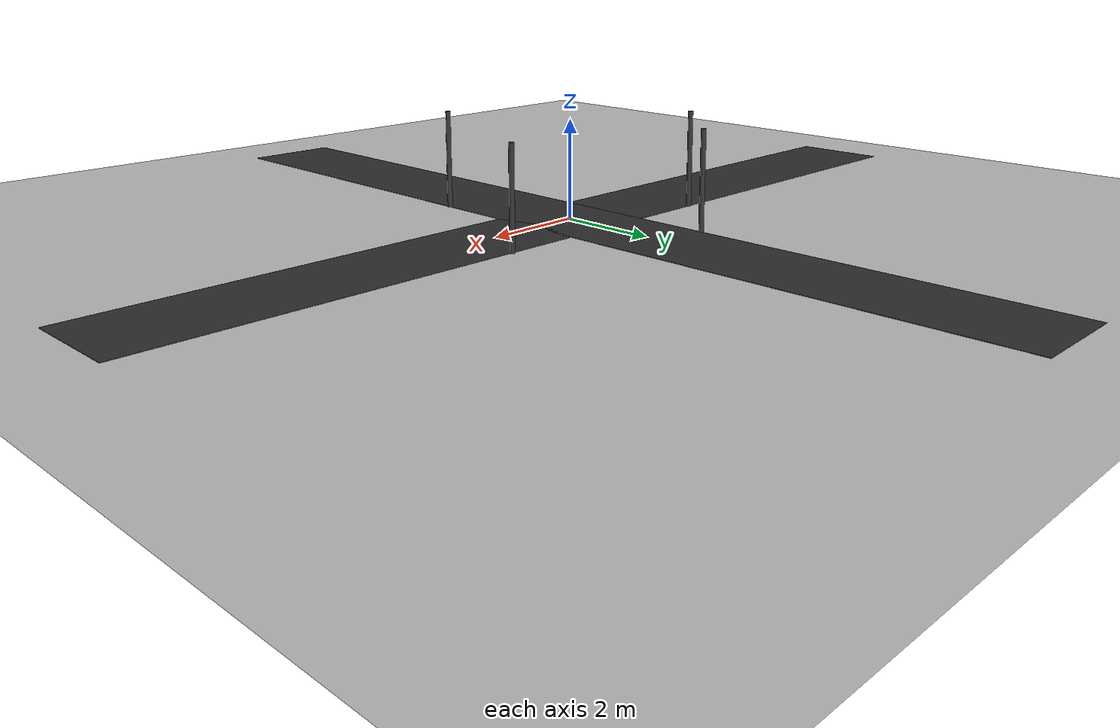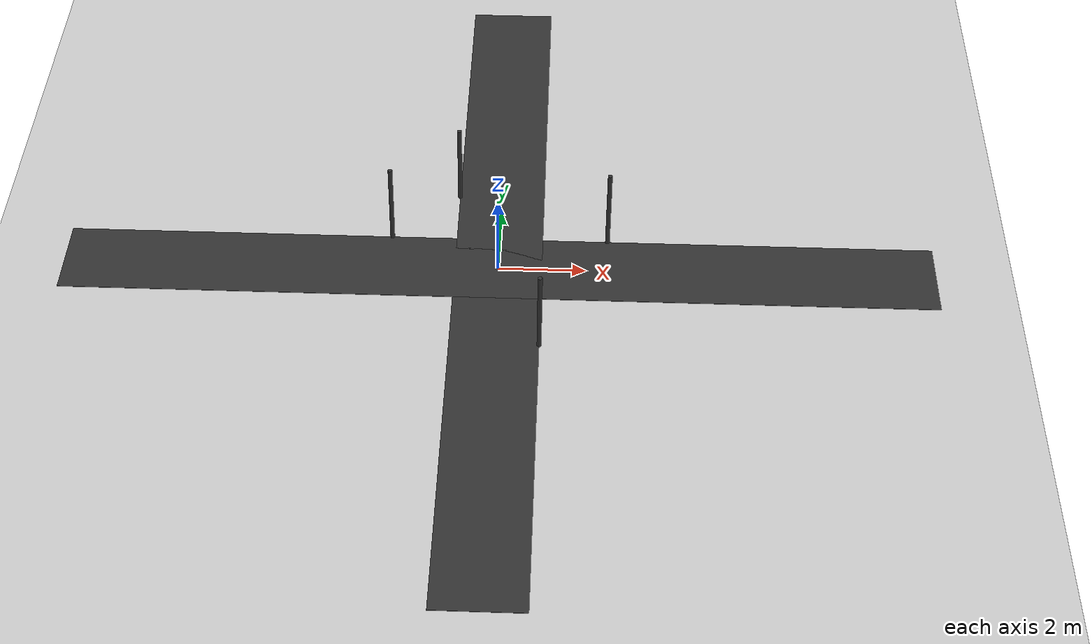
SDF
<sdf version="1.6">
 <world name="TrafficWorld">
  <include><uri>model://sun</uri></include>
  <include><uri>model://ground_plane</uri></include>
  <model name="road_ns">
   <static>true</static>
   <link name="link">
    <visual name="visual">
     <pose>0 0 0.005 0 0 0</pose>
     <geometry><box><size>2 20 0.01</size></box></geometry>
     <material><ambient>0.1 0.1 0.1 1</ambient><diffuse>0.2 0.2 0.2 1</diffuse></material>
    </visual>
    <collision name="collision">
     <pose>0 0 0.005 0 0 0</pose>
     <geometry><box><size>2 20 0.01</size></box></geometry>
    </collision>
   </link>
  </model>
  <model name="road_ew">
   <static>true</static>
   <pose>0 0 0 0 0 1.5708</pose>
   <link name="link">
    <visual name="visual">
     <pose>0 0 0.005 0 0 0</pose>
     <geometry><box><size>2 20 0.01</size></box></geometry>
     <material><ambient>0.1 0.1 0.1 1</ambient><diffuse>0.2 0.2 0.2 1</diffuse></material>
    </visual>
    <collision name="collision">
     <pose>0 0 0.005 0 0 0</pose>
     <geometry><box><size>2 20 0.01</size></box></geometry>
    </collision>
   </link>
  </model>
  <model name="pole_0">
   <static>true</static>
   <pose>-1  2.5 1 0 0 0</pose>
   <link name="pole_link">
    <visual name="pole_visual">
     <geometry><cylinder><radius>0.05</radius><length>2.0</length></cylinder></geometry>
     <material><ambient>0.1 0.1 0.1 1</ambient><diffuse>0.2 0.2 0.2 1</diffuse></material>
    </visual>
    <collision name="pole_collision">
     <geometry><cylinder><radius>0.05</radius><length>2.0</length></cylinder></geometry>
    </collision>
   </link>
  </model>
  <model name="pole_1">
   <static>true</static>
   <pose>2.5  1 1 0 0 0</pose>
   <link name="pole_link">
    <visual name="pole_visual">
     <geometry><cylinder><radius>0.05</radius><length>2.0</length></cylinder></geometry>
     <material><ambient>0.1 0.1 0.1 1</ambient><diffuse>0.2 0.2 0.2 1</diffuse></material>
    </visual>
    <collision name="pole_collision">
     <geometry><cylinder><radius>0.05</radius><length>2.0</length></cylinder></geometry>
    </collision>
   </link>
  </model>
  <model name="pole_2">
   <static>true</static>
   <pose>1 -2.5 1 0 0 0</pose>
   <link name="pole_link">
    <visual name="pole_visual">
     <geometry><cylinder><radius>0.05</radius><length>2.0</length></cylinder></geometry>
     <material><ambient>0.1 0.1 0.1 1</ambient><diffuse>0.2 0.2 0.2 1</diffuse></material>
    </visual>
    <collision name="pole_collision">
     <geometry><cylinder><radius>0.05</radius><length>2.0</length></cylinder></geometry>
    </collision>
   </link>
  </model>
  <model name="pole_3">
   <static>true</static>
   <pose>-2.5  1 1 0 0 0</pose>
   <link name="pole_link">
    <visual name="pole_visual">
     <geometry><cylinder><radius>0.05</radius><length>2.0</length></cylinder></geometry>
     <material><ambient>0.1 0.1 0.1 1</ambient><diffuse>0.2 0.2 0.2 1</diffuse></material>
    </visual>
    <collision name="pole_collision">
     <geometry><cylinder><radius>0.05</radius><length>2.0</length></cylinder></geometry>
    </collision>
   </link>
  </model>
 </world>
</sdf>
